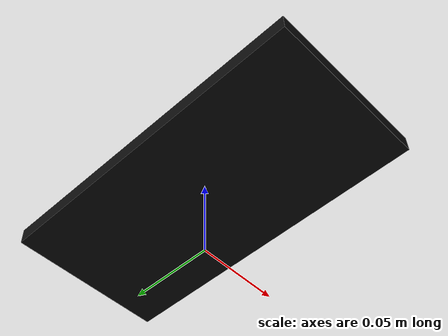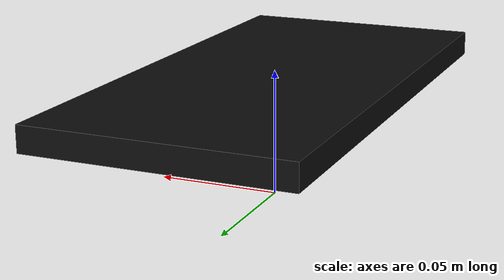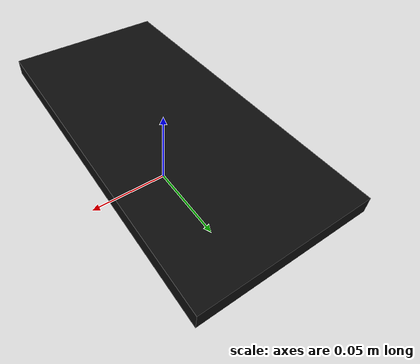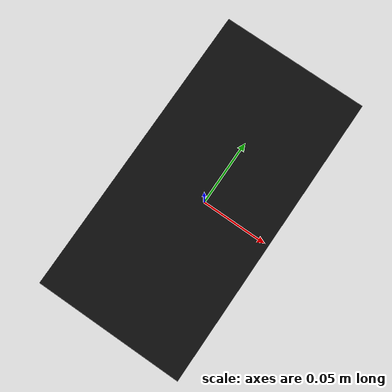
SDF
<?xml version="1.0" ?>
<sdf version="1.5">
  <model name="rescue_can">
    <static>True</static>
    <link name="link">
      <collision name="body">
        <pose>0 0 0.045  0 0 0</pose>
        <geometry>
          <box> <size> 0.1 0.2 0.010 </size> </box>
        </geometry>
      </collision>
      <visual name="body">
        <pose>0 0 0.045  0 0 0</pose>
        <geometry>
          <box> <size> 0.1 0.2 0.010 </size> </box>
        </geometry>
        <material>
          <ambient> .05 .05 .05 1</ambient>
          <diffuse> .05 .05 .05 1</diffuse>
          <specular>0.1 0.1 0.1 1</specular>
        </material>
      </visual>
    </link>
  </model>
</sdf>
